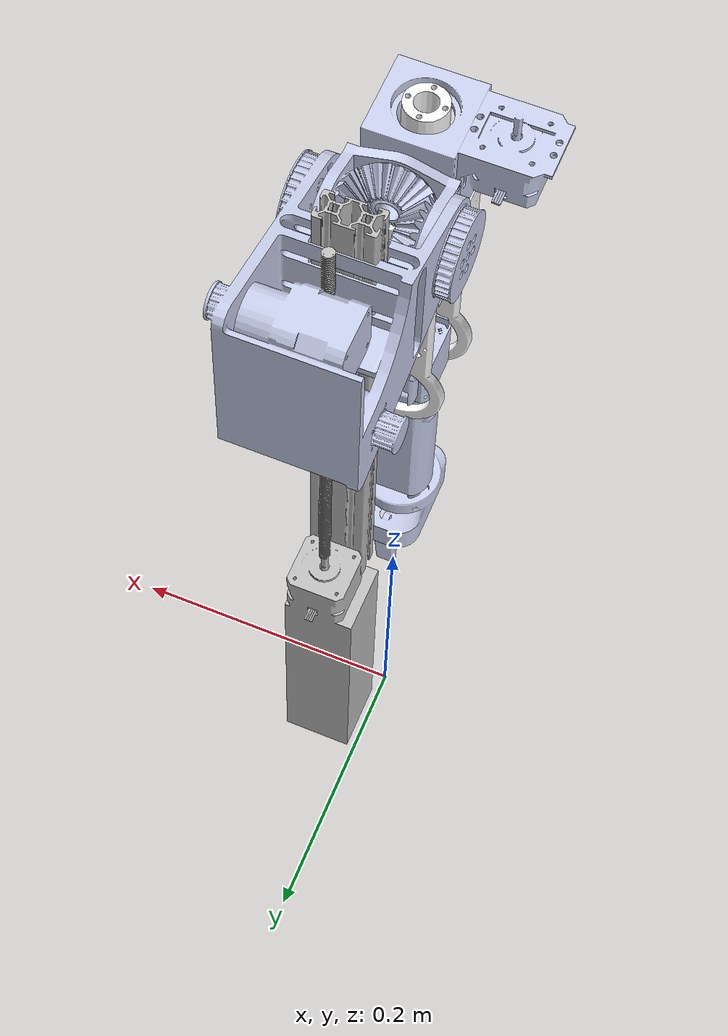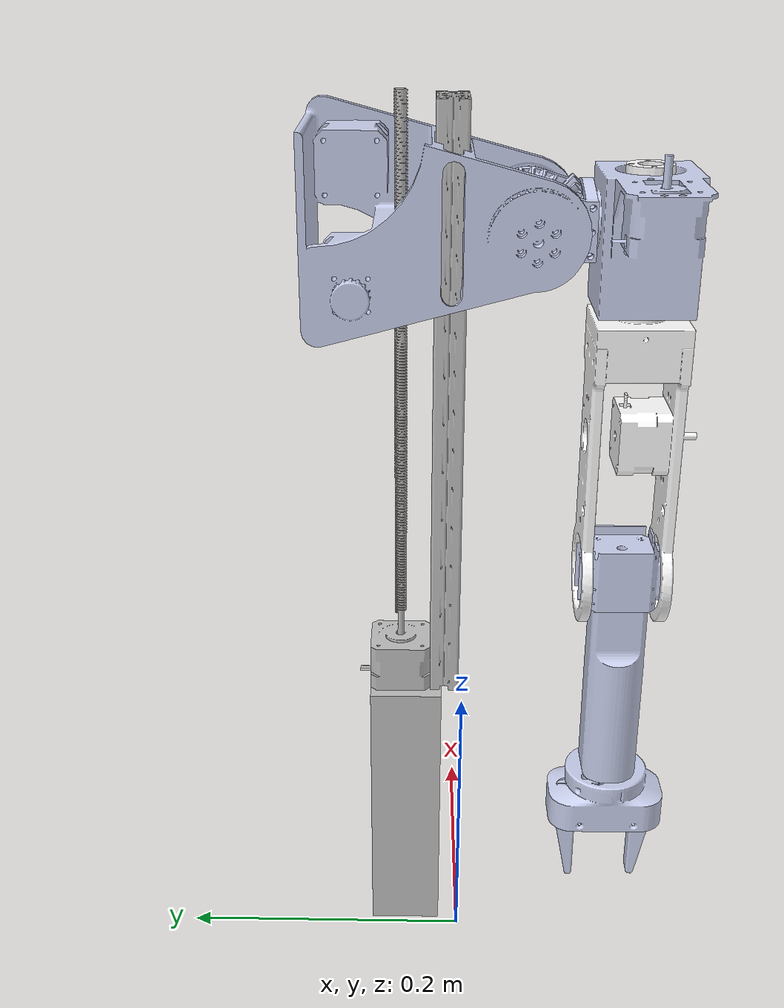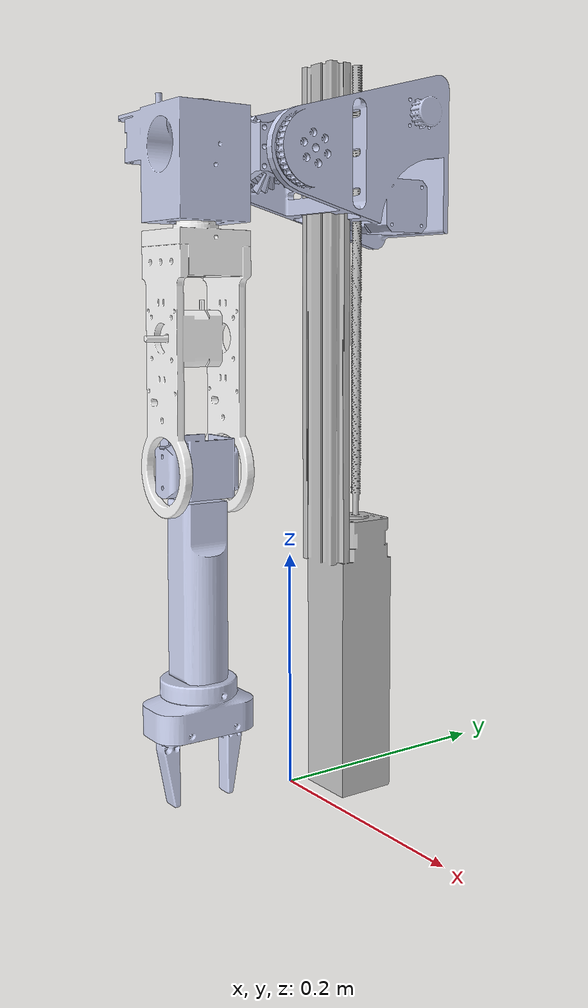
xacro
<?xml version="1.0"?>
<robot name="seven_dof_arm" xmlns:xacro="http://www.ros.org/wiki/xacro">

    <xacro:include filename="robot_arm7f.xacro" />

    <xacro:include filename="ros2_control.xacro" />

</robot>

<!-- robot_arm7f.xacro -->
<robot name="seven_dof_arm" xmlns:xacro="http://www.ros.org/wiki/xacro">

  <link name="world" type="fixed"/>
    <joint name="fixed" type="fixed">
    <parent link="world"/>
    <child link="base_link"/>
    <origin rpy="0 0 0" xyz="0 0 0"/>
  </joint>
  <link
    name="base_link">
    <inertial>
      <origin
        xyz="0.0347002303371341 0.346023339775448 -0.0241867339220317"
        rpy="0 0 0" />
      <mass
        value="0.18575737424898" />
      <inertia
        ixx="0.0016866174407422"
        ixy="3.07155155497949E-09"
        ixz="1.91791459670807E-10"
        iyy="3.87750802818281E-05"
        iyz="-4.08545352649858E-09"
        izz="0.00170031937070701" />
    </inertial>
    <visual>
      <origin
        xyz="0 0 0"
        rpy="0 0 0" />
      <geometry>
        <mesh
          filename="package://seven_dof_arm/meshes/base_link.STL" />
      </geometry>
      <material
        name="">
        <color
          rgba="0.749019607843137 0.749019607843137 0.749019607843137 1" />
      </material>
    </visual>
    <collision>
      <origin
        xyz="0 0 0"
        rpy="0 0 0" />
      <geometry>
        <mesh
          filename="package://seven_dof_arm/meshes/base_link.STL" />
      </geometry>
    </collision>
  </link>
    <gazebo reference="base_link">
        <material>Gazebo/silver</material>
    </gazebo>
  <link
    name="link1">
    <inertial>
      <origin
        xyz="0.0916699629769903 -0.0442131895737334 -0.0674770407988403"
        rpy="0 0 0" />
      <mass
        value="0.435483637323834" />
      <inertia
        ixx="0.000554861160419143"
        ixy="-1.69557318491907E-06"
        ixz="1.10985030305624E-06"
        iyy="0.00067334192058171"
        iyz="5.78646055724129E-05"
        izz="0.000786642437899407" />
    </inertial>
    <visual>
      <origin
        xyz="0 0 0"
        rpy="0 0 0" />
      <geometry>
        <mesh
          filename="package://seven_dof_arm/meshes2/link1.STL" />
      </geometry>
      <material
        name="">
        <color
          rgba="0.792156862745098 0.819607843137255 0.933333333333333 1" />
      </material>
    </visual>
    <collision>
      <origin
        xyz="0 0 0"
        rpy="0 0 0" />
      <geometry>
        <mesh
          filename="package://seven_dof_arm/meshes2/link1.STL" />
      </geometry>
    </collision>
  </link>
    <gazebo reference="link1">
        <material>Gazebo/silver</material>
    </gazebo>
  <joint
    name="joint1"
    type="prismatic">
    <origin
      xyz="0.079186 -0.036824 0.45915"
      rpy="3.1416 0 1.5708" />
    <parent
      link="base_link" />
    <child
      link="link1" />
    <axis
      xyz="0 0 1" />
    <limit
      lower="0"
      upper="0.3"
      effort="0"
      velocity="0" />
  </joint>
  <link
    name="link2">
    <inertial>
      <origin
        xyz="-0.0362242257746984 0.00610793662936298 -4.5353654753888E-05"
        rpy="0 0 0" />
      <mass
        value="0.0692232619946469" />
      <inertia
        ixx="2.30301654770882E-05"
        ixy="-3.32021307521991E-12"
        ixz="9.55728406837182E-12"
        iyy="1.60035358829875E-05"
        iyz="3.10360859630282E-08"
        izz="1.67020019173866E-05" />
    </inertial>
    <visual>
      <origin
        xyz="0 0 0"
        rpy="0 0 0" />
      <geometry>
        <mesh
          filename="package://seven_dof_arm/meshes2/link2.STL" />
      </geometry>
      <material
        name="">
        <color
          rgba="0.792156862745098 0.819607843137255 0.933333333333333 1" />
      </material>
    </visual>
    <collision>
      <origin
        xyz="0 0 0"
        rpy="0 0 0" />
      <geometry>
        <mesh
          filename="package://seven_dof_arm/meshes2/link2.STL" />
      </geometry>
    </collision>
  </link>
  <gazebo reference="link2">
      <material>Gazebo/silver</material>
  </gazebo>
  <joint
    name="joint2"
    type="revolute">
    <origin
      xyz="0 -0.0083 -0.067713"
      rpy="-0.0070619 0 1.5708" />
    <parent
      link="link1" />
    <child
      link="link2" />
    <axis
      xyz="1 0 0" />
    <limit
      lower="-1.5702"
      upper="0.05236"
      effort="0"
      velocity="0" />
  </joint>
  <link
    name="link3">
    <inertial>
      <origin
        xyz="-0.0144850998690551 0.0559446704580446 -0.00595975002120575"
        rpy="0 0 0" />
      <mass
        value="0.256407451082195" />
      <inertia
        ixx="0.000181490660126937"
        ixy="1.73315158687538E-06"
        ixz="1.25188642393082E-05"
        iyy="0.000203552436340242"
        iyz="-1.76484174404525E-06"
        izz="0.000178856893048134" />
    </inertial>
    <visual>
      <origin
        xyz="0 0 0"
        rpy="0 0 0" />
      <geometry>
        <mesh
          filename="package://seven_dof_arm/meshes2/link3.STL" />
      </geometry>
      <material
        name="">
        <color
          rgba="0.792156862745098 0.819607843137255 0.933333333333333 1" />
      </material>
    </visual>
    <collision>
      <origin
        xyz="0 0 0"
        rpy="0 0 0" />
      <geometry>
        <mesh
          filename="package://seven_dof_arm/meshes2/link3.STL" />
      </geometry>
    </collision>
  </link>
  <gazebo reference="link3">
      <material>Gazebo/silver</material>
  </gazebo>
  <joint
    name="joint3"
    type="revolute">
    <origin
      xyz="-0.036224 0.0098864 -0.00015396"
      rpy="0 0.78602 0" />
    <parent
      link="link2" />
    <child
      link="link3" />
    <axis
      xyz="0 1 0" />
    <limit
      lower="-1.5702"
      upper="1.5702"
      effort="0"
      velocity="0" />
  </joint>
  <link
    name="link4">
    <inertial>
      <origin
        xyz="-0.109170138525759 -0.00125414996636081 -3.82551769230605E-05"
        rpy="0 0 0" />
      <mass
        value="0.307213644543192" />
      <inertia
        ixx="0.000100181559494598"
        ixy="1.48016719615696E-08"
        ixz="-2.6930022984696E-07"
        iyy="0.000601480975551128"
        iyz="2.36788719456859E-10"
        izz="0.000556821791320744" />
    </inertial>
    <visual>
      <origin
        xyz="0 0 0"
        rpy="0 0 0" />
      <geometry>
        <mesh
          filename="package://seven_dof_arm/meshes2/link4.STL" />
      </geometry>
      <material
        name="">
        <color
          rgba="1 1 1 1" />
      </material>
    </visual>
    <collision>
      <origin
        xyz="0 0 0"
        rpy="0 0 0" />
      <geometry>
        <mesh
          filename="package://seven_dof_arm/meshes2/link4.STL" />
      </geometry>
    </collision>
  </link>
  <gazebo reference="link4">
      <material>Gazebo/silver</material>
  </gazebo>
  <joint
    name="joint4"
    type="revolute">
    <origin
      xyz="0 0.060688 0"
      rpy="-3.1416 0.78477 0" />
    <parent
      link="link3" />
    <child
      link="link4" />
    <axis
      xyz="1 0 0" />
    <limit
      lower="0"
      upper="0.872665"
      effort="0"
      velocity="0" />
  </joint>
  <link
    name="link5">
    <inertial>
      <origin
        xyz="-4.03053779962151E-05 0.00226785503086656 0.000188099816106901"
        rpy="0 0 0" />
      <mass
        value="0.0783880463610158" />
      <inertia
        ixx="1.98092122009332E-05"
        ixy="-4.85880932081893E-09"
        ixz="8.53128675466692E-09"
        iyy="1.68289094477428E-05"
        iyz="3.70335541134835E-07"
        izz="2.75893747032841E-05" />
    </inertial>
    <visual>
      <origin
        xyz="0 0 0"
        rpy="0 0 0" />
      <geometry>
        <mesh
          filename="package://seven_dof_arm/meshes2/link5.STL" />
      </geometry>
      <material
        name="">
        <color
          rgba="0.792156862745098 0.819607843137255 0.933333333333333 1" />
      </material>
    </visual>
    <collision>
      <origin
        xyz="0 0 0"
        rpy="0 0 0" />
      <geometry>
        <mesh
          filename="package://seven_dof_arm/meshes2/link5.STL" />
      </geometry>
    </collision>
  </link>
  <gazebo reference="link5">
      <material>Gazebo/silver</material>
  </gazebo>
  <joint
    name="joint5"
    type="revolute">
    <origin
      xyz="-0.2417 0 0"
      rpy="3.1416 1.5708 0" />
    <parent
      link="link4" />
    <child
      link="link5" />
    <axis
      xyz="0 1 0" />
    <limit
      lower="0"
      upper="2.0944"
      effort="0"
      velocity="0" />
  </joint>
  <link
    name="link6">
    <inertial>
      <origin
        xyz="-1.71210129407129E-11 2.14186959673901E-06 0.0723884833771878"
        rpy="0 0 0" />
      <mass
        value="0.201176904931269" />
      <inertia
        ixx="0.000341739374396861"
        ixy="6.00880706868641E-10"
        ixz="3.83549654144875E-14"
        iyy="0.000337564433731988"
        iyz="1.35703929148043E-09"
        izz="4.87496416134206E-05" />
    </inertial>
    <visual>
      <origin
        xyz="0 0 0"
        rpy="0 0 0" />
      <geometry>
        <mesh
          filename="package://seven_dof_arm/meshes2/link6.STL" />
      </geometry>
      <material
        name="">
        <color
          rgba="0.792156862745098 0.819607843137255 0.933333333333333 1" />
      </material>
    </visual>
    <collision>
      <origin
        xyz="0 0 0"
        rpy="0 0 0" />
      <geometry>
        <mesh
          filename="package://seven_dof_arm/meshes2/link6.STL" />
      </geometry>
    </collision>
  </link>
  <gazebo reference="link6">
      <material>Gazebo/silver</material>
  </gazebo>
  <joint
    name="joint6"
    type="revolute">
    <origin
      xyz="0 0 0.023439"
      rpy="0 0 -1.5708" />
    <parent
      link="link5" />
    <child
      link="link6" />
    <axis
      xyz="0 0 1" />
    <limit
      lower="0"
      upper="6.2832"
      effort="0"
      velocity="0" />
  </joint>
  <link
    name="link7">
    <inertial>
      <origin
        xyz="0.00031222685375841 -0.000327180590844703 0.0210790419598621"
        rpy="0 0 0" />
      <mass
        value="0.0531058037510222" />
      <inertia
        ixx="1.87781255142653E-05"
        ixy="-2.13672586806955E-06"
        ixz="1.09897769756693E-07"
        iyy="2.87631837946065E-05"
        iyz="-6.51839344046795E-08"
        izz="4.1335700567351E-05" />
    </inertial>
    <visual>
      <origin
        xyz="0 0 0"
        rpy="0 0 0" />
      <geometry>
        <mesh
          filename="package://seven_dof_arm/meshes2/link7.STL" />
      </geometry>
      <material
        name="">
        <color
          rgba="0.792156862745098 0.819607843137255 0.933333333333333 1" />
      </material>
    </visual>
    <collision>
      <origin
        xyz="0 0 0"
        rpy="0 0 0" />
      <geometry>
        <mesh
          filename="package://seven_dof_arm/meshes2/link7.STL" />
      </geometry>
    </collision>
  </link>
  <gazebo reference="link7">
      <material>Gazebo/silver</material>
  </gazebo>
  <joint
    name="joint7"
    type="fixed">
    <origin
      xyz="0 0 0.14004"
      rpy="0 0 2.9385" />
    <parent
      link="link6" />
    <child
      link="link7" />
    <axis
      xyz="0 0 1" />
  </joint>
  <link
    name="linkf1">
    <inertial>
      <origin
        xyz="0.00314018004474953 -0.000769390443373714 -0.00966523365538721"
        rpy="0 0 0" />
      <mass
        value="0.0092906601057542" />
      <inertia
        ixx="1.34161161828399E-06"
        ixy="5.47668679324216E-08"
        ixz="-8.62150034576989E-08"
        iyy="1.50413012428117E-06"
        iyz="-7.65501105050382E-09"
        izz="5.35661234191757E-07" />
    </inertial>
    <visual>
      <origin
        xyz="0 0 0"
        rpy="0 0 0" />
      <geometry>
        <mesh
          filename="package://seven_dof_arm/meshes2/linkf1.STL" />
      </geometry>
      <material
        name="">
        <color
          rgba="0.792156862745098 0.819607843137255 0.933333333333333 1" />
      </material>
    </visual>
    <collision>
      <origin
        xyz="0 0 0"
        rpy="0 0 0" />
      <geometry>
        <mesh
          filename="package://seven_dof_arm/meshes2/linkf1.STL" />
      </geometry>
    </collision>
  </link>
  <gazebo reference="linkf1">
      <material>Gazebo/silver</material>
  </gazebo>
  <joint
    name="jointf1"
    type="prismatic">
    <origin
      xyz="0.021208 0.0009582 0.053493"
      rpy="-3.1241 0 0.20309" />
    <parent
      link="link7" />
    <child
      link="linkf1" />
    <axis
      xyz="-1 0 0" />
    <limit
      lower="0"
      upper="0.023"
      effort="0"
      velocity="0" />
  </joint>
  <link
    name="linkf2">
    <inertial>
      <origin
        xyz="0.00314018001393025 -0.000769390464555986 -0.00966523362529868"
        rpy="0 0 0" />
      <mass
        value="0.00929066004928656" />
      <inertia
        ixx="1.34161159681315E-06"
        ixy="5.47668657804483E-08"
        ixz="-8.62150024421522E-08"
        iyy="1.50413010518885E-06"
        iyz="-7.65500747497169E-09"
        izz="5.35661233459468E-07" />
    </inertial>
    <visual>
      <origin
        xyz="0 0 0"
        rpy="0 0 0" />
      <geometry>
        <mesh
          filename="package://seven_dof_arm/meshes2/linkf2.STL" />
      </geometry>
      <material
        name="">
        <color
          rgba="0.792156862745098 0.819607843137255 0.933333333333333 1" />
      </material>
    </visual>
    <collision>
      <origin
        xyz="0 0 0"
        rpy="0 0 0" />
      <geometry>
        <mesh
          filename="package://seven_dof_arm/meshes2/linkf2.STL" />
      </geometry>
    </collision>
  </link>
  <gazebo reference="linkf2">
      <material>Gazebo/silver</material>
  </gazebo>
  <joint
    name="jointf2"
    type="prismatic">
    <origin
      xyz="-0.0217 -0.0019765 0.053593"
      rpy="3.1241 0 -2.9385" />
    <parent
      link="link7" />
    <child
      link="linkf2" />
    <axis
      xyz="1 0 0" />
    <limit
      lower="-0.023"
      upper="0"
      effort="0"
      velocity="0" />
  </joint>
</robot>
